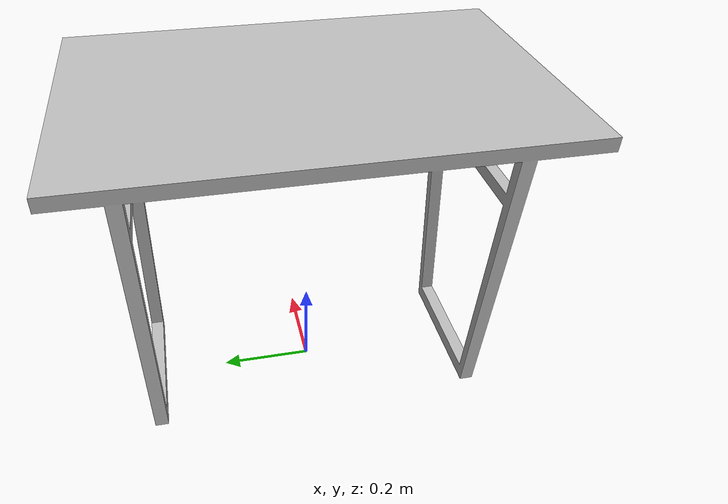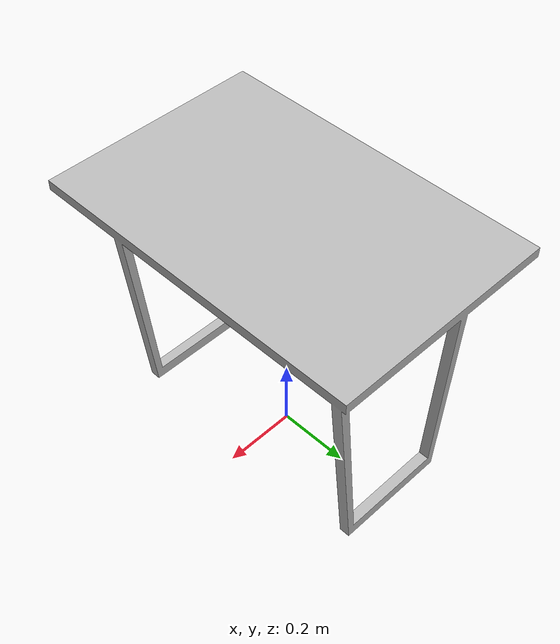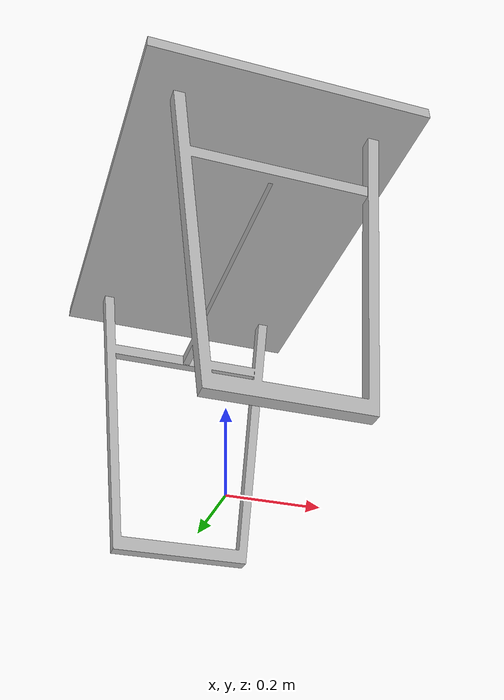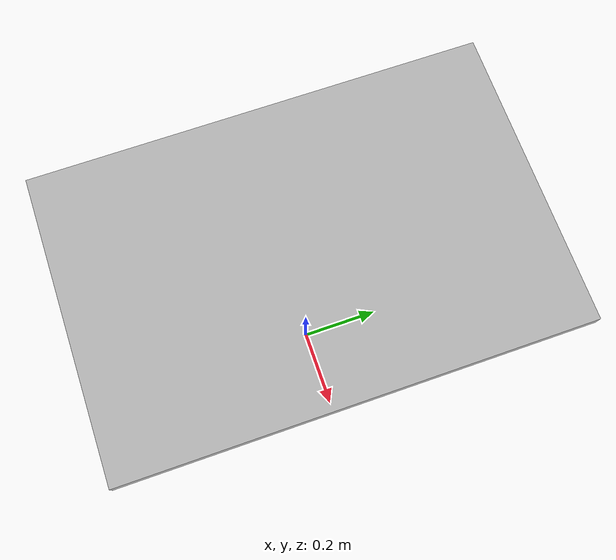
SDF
<?xml version='1.0' encoding='utf-8'?>
<sdf version="1.6">
  <model name="FoodCourtTable1">
   <static>true</static>
    <link name="body">
      <pose>0 0 0 0 0 0</pose>

      <visual name="visual">
        <geometry>
          <mesh>
            <uri>model://FoodCourtTable1/meshes/FoodCourtTable1.obj</uri>
          </mesh>
        </geometry>
      </visual>

      <collision name="collision">
        <geometry>
          <mesh>
            <uri>model://FoodCourtTable1/meshes/FoodCourtTable1_Col.obj</uri>
          </mesh>
        </geometry>
      </collision>

    </link>
  </model>
</sdf>
